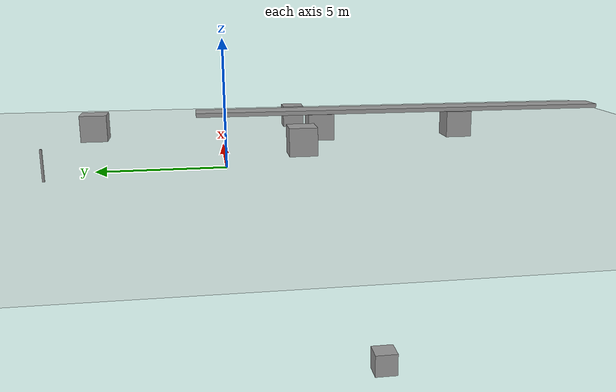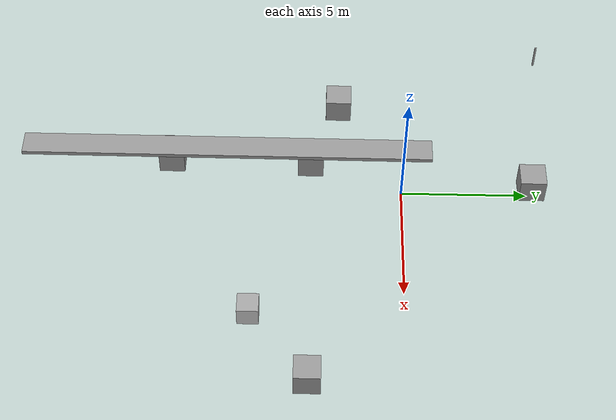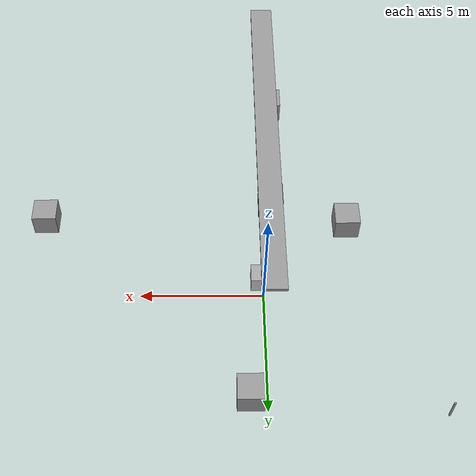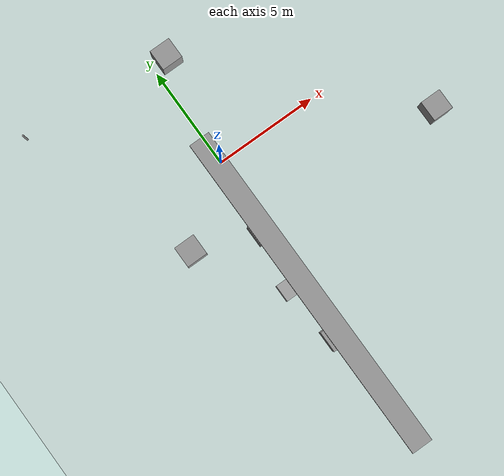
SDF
<sdf version="1.6">
 <world name="default">
  <model name="ground_plane">
   <static>1</static>
   <link name="link">
    <collision name="collision">
     <geometry><plane><normal>0 0 1</normal><size>100 100</size></plane></geometry>
     <surface>
      <contact><collide_bitmask>65535</collide_bitmask></contact>
      <friction><ode><mu>100</mu><mu2>50</mu2></ode></friction>
     </surface>
    </collision>
    <visual name="visual">
     <cast_shadows>0</cast_shadows>
     <geometry><plane><normal>0 0 1</normal><size>100 100</size></plane></geometry>
     <material>
      <script><uri>file://media/materials/scripts/gazebo.material</uri><name>Gazebo/Grey</name></script>
     </material>
    </visual>
   </link>
  </model>
  <model name="unit_box">
   <pose>0.686934 4.97774 1.63725 0 -8e-06 -3.1e-05</pose>
   <link name="link">
    <inertial>
     <mass>1</mass>
     <inertia>
      <ixx>0.166667</ixx>
      <ixy>0</ixy>
      <ixz>0</ixz>
      <iyy>0.166667</iyy>
      <iyz>0</iyz>
      <izz>0.166667</izz>
     </inertia>
    </inertial>
    <collision name="collision"><geometry><box><size>1 1 1</size></box></geometry></collision>
    <visual name="visual">
     <geometry><box><size>1 1 1</size></box></geometry>
     <material>
      <script><name>Gazebo/Grey</name><uri>file://media/materials/scripts/gazebo.material</uri></script>
     </material>
    </visual>
   </link>
  </model>
  <model name="unit_cylinder_clone_16_clone_24">
   <link name="link">
    <inertial>
     <mass>10000.1</mass>
     <inertia><ixx>837.395</ixx><ixy>0</ixy><ixz>0</ixz><iyy>837.395</iyy><iyz>0</iyz><izz>8.09922</izz></inertia>
    </inertial>
    <visual name="visual">
     <geometry><cylinder><radius>0.0402468</radius><length>1</length></cylinder></geometry>
     <material>
      <script><name>Gazebo/Grey</name><uri>file://media/materials/scripts/gazebo.material</uri></script>
      <shader type="vertex"><normal_map>__default__</normal_map></shader>
     </material>
    </visual>
    <collision name="collision">
     <geometry><cylinder><radius>0.040247</radius><length>1</length></cylinder></geometry>
     <surface>
      <friction>
       <ode><mu>1</mu><mu2>1</mu2><fdir1>0 0 0</fdir1><slip1>0</slip1><slip2>0</slip2></ode>
       <torsional>
        <coefficient>1</coefficient>
        <patch_radius>0</patch_radius>
        <surface_radius>0</surface_radius>
        <use_patch_radius>1</use_patch_radius>
        <ode><slip>0</slip></ode>
       </torsional>
      </friction>
      <bounce><restitution_coefficient>0</restitution_coefficient><threshold>1e+06</threshold></bounce>
      <contact>
       <collide_without_contact>0</collide_without_contact>
       <collide_without_contact_bitmask>1</collide_without_contact_bitmask>
       <collide_bitmask>1</collide_bitmask>
       <ode>
        <soft_cfm>0</soft_cfm>
        <soft_erp>0.2</soft_erp>
        <kp>1e+13</kp>
        <kd>1</kd>
        <max_vel>0.01</max_vel>
        <min_depth>0</min_depth>
       </ode>
       <bullet>
        <split_impulse>1</split_impulse>
        <split_impulse_penetration_threshold>-0.01</split_impulse_penetration_threshold>
        <soft_cfm>0</soft_cfm>
        <soft_erp>0.2</soft_erp>
        <kp>1e+13</kp>
        <kd>1</kd>
       </bullet>
      </contact>
     </surface>
    </collision>
   </link>
   <static>0</static>
   <pose>-6.37961 5.67188 1.63725 -1e-06 1e-06 -0.000662</pose>
  </model>
  <model name="unit_box_0">
   <pose>-3.41361 -2.58533 1.63725 8e-06 0 -8e-06</pose>
   <link name="link">
    <inertial>
     <mass>1</mass>
     <inertia>
      <ixx>0.166667</ixx>
      <ixy>0</ixy>
      <ixz>0</ixz>
      <iyy>0.166667</iyy>
      <iyz>0</iyz>
      <izz>0.166667</izz>
     </inertia>
    </inertial>
    <collision name="collision"><geometry><box><size>1 1 1</size></box></geometry></collision>
    <visual name="visual">
     <geometry><box><size>1 1 1</size></box></geometry>
     <material>
      <script><name>Gazebo/Grey</name><uri>file://media/materials/scripts/gazebo.material</uri></script>
     </material>
    </visual>
   </link>
  </model>
  <model name="unit_box_1">
   <pose>9.14383 -3.61985 0.637255 0 -0 0</pose>
   <link name="link">
    <inertial>
     <mass>1</mass>
     <inertia>
      <ixx>0.166667</ixx>
      <ixy>0</ixy>
      <ixz>0</ixz>
      <iyy>0.166667</iyy>
      <iyz>0</iyz>
      <izz>0.166667</izz>
     </inertia>
    </inertial>
    <collision name="collision"><geometry><box><size>1 1 1</size></box></geometry></collision>
    <visual name="visual">
     <geometry><box><size>1 1 1</size></box></geometry>
     <material>
      <script><name>Gazebo/Grey</name><uri>file://media/materials/scripts/gazebo.material</uri></script>
     </material>
    </visual>
   </link>
  </model>
  <model name="unit_box_0_clone_2">
   <pose>-0.321171 -6.95267 2.20764 4e-06 3.9e-05 0.000696</pose>
   <link name="link">
    <inertial>
     <mass>1</mass>
     <inertia>
      <ixx>0.166667</ixx>
      <ixy>0</ixy>
      <ixz>0</ixz>
      <iyy>0.166667</iyy>
      <iyz>0</iyz>
      <izz>0.166667</izz>
     </inertia>
    </inertial>
    <collision name="collision"><geometry><box><size>1 16.0982 0.155905</size></box></geometry></collision>
    <visual name="visual">
     <geometry><box><size>1 16.0982 0.155905</size></box></geometry>
     <material>
      <script><name>Gazebo/Grey</name><uri>file://media/materials/scripts/gazebo.material</uri></script>
     </material>
    </visual>
   </link>
  </model>
  <model name="unit_box_0_clone_0">
   <link name="link">
    <inertial>
     <mass>1e+10</mass>
     <inertia>
      <ixx>1.66667e+09</ixx>
      <ixy>0</ixy>
      <ixz>0</ixz>
      <iyy>1.66667e+09</iyy>
      <iyz>0</iyz>
      <izz>1.66667e+09</izz>
     </inertia>
    </inertial>
    <visual name="visual">
     <geometry><box><size>1 1 1</size></box></geometry>
     <material>
      <script><name>Gazebo/Grey</name><uri>file://media/materials/scripts/gazebo.material</uri></script>
      <shader type="vertex"><normal_map>__default__</normal_map></shader>
     </material>
    </visual>
    <collision name="collision">
     <geometry><box><size>1 1 1</size></box></geometry>
     <surface>
      <friction>
       <ode><mu>1</mu><mu2>1</mu2><fdir1>0 0 0</fdir1><slip1>0</slip1><slip2>0</slip2></ode>
       <torsional>
        <coefficient>1</coefficient>
        <patch_radius>0</patch_radius>
        <surface_radius>0</surface_radius>
        <use_patch_radius>1</use_patch_radius>
        <ode><slip>0</slip></ode>
       </torsional>
      </friction>
      <bounce><restitution_coefficient>0</restitution_coefficient><threshold>1e+06</threshold></bounce>
      <contact>
       <collide_without_contact>0</collide_without_contact>
       <collide_without_contact_bitmask>1</collide_without_contact_bitmask>
       <collide_bitmask>1</collide_bitmask>
       <ode>
        <soft_cfm>0</soft_cfm>
        <soft_erp>0.2</soft_erp>
        <kp>1e+13</kp>
        <kd>1</kd>
        <max_vel>0.01</max_vel>
        <min_depth>0</min_depth>
       </ode>
       <bullet>
        <split_impulse>1</split_impulse>
        <split_impulse_penetration_threshold>-0.01</split_impulse_penetration_threshold>
        <soft_cfm>0</soft_cfm>
        <soft_erp>0.2</soft_erp>
        <kp>1e+13</kp>
        <kd>1</kd>
       </bullet>
      </contact>
     </surface>
    </collision>
   </link>
   <static>0</static>
   <pose>-0.364491 -6.40442 -8.69384 -3.4e-05 -0 -0.000205</pose>
  </model>
  <model name="unit_box_0_clone_1">
   <link name="link">
    <inertial>
     <mass>1e+08</mass>
     <inertia>
      <ixx>1.66667e+07</ixx>
      <ixy>0</ixy>
      <ixz>0</ixz>
      <iyy>1.66667e+07</iyy>
      <iyz>0</iyz>
      <izz>1.66667e+07</izz>
     </inertia>
    </inertial>
    <visual name="visual">
     <geometry><box><size>1 1 1</size></box></geometry>
     <material>
      <script><name>Gazebo/Grey</name><uri>file://media/materials/scripts/gazebo.material</uri></script>
      <shader type="vertex"><normal_map>__default__</normal_map></shader>
     </material>
    </visual>
    <collision name="collision">
     <geometry><box><size>1 1 1</size></box></geometry>
     <surface>
      <friction>
       <ode><mu>1</mu><mu2>1</mu2><fdir1>0 0 0</fdir1><slip1>0</slip1><slip2>0</slip2></ode>
       <torsional>
        <coefficient>1</coefficient>
        <patch_radius>0</patch_radius>
        <surface_radius>0</surface_radius>
        <use_patch_radius>1</use_patch_radius>
        <ode><slip>0</slip></ode>
       </torsional>
      </friction>
      <bounce><restitution_coefficient>0</restitution_coefficient><threshold>1e+06</threshold></bounce>
      <contact>
       <collide_without_contact>0</collide_without_contact>
       <collide_without_contact_bitmask>1</collide_without_contact_bitmask>
       <collide_bitmask>1</collide_bitmask>
       <ode>
        <soft_cfm>0</soft_cfm>
        <soft_erp>0.2</soft_erp>
        <kp>1e+13</kp>
        <kd>1</kd>
        <max_vel>0.01</max_vel>
        <min_depth>0</min_depth>
       </ode>
       <bullet>
        <split_impulse>1</split_impulse>
        <split_impulse_penetration_threshold>-0.01</split_impulse_penetration_threshold>
        <soft_cfm>0</soft_cfm>
        <soft_erp>0.2</soft_erp>
        <kp>1e+13</kp>
        <kd>1</kd>
       </bullet>
      </contact>
     </surface>
    </collision>
   </link>
   <static>0</static>
   <pose>-0.358177 -3.65694 1.62992 0 -0 9.4e-05</pose>
  </model>
  <model name="unit_box_0_clone">
   <link name="link">
    <inertial>
     <mass>1e+08</mass>
     <inertia>
      <ixx>1.66667e+07</ixx>
      <ixy>0</ixy>
      <ixz>0</ixz>
      <iyy>1.66667e+07</iyy>
      <iyz>0</iyz>
      <izz>1.66667e+07</izz>
     </inertia>
    </inertial>
    <visual name="visual">
     <geometry><box><size>1 1 1</size></box></geometry>
     <material>
      <script><name>Gazebo/Grey</name><uri>file://media/materials/scripts/gazebo.material</uri></script>
      <shader type="vertex"><normal_map>__default__</normal_map></shader>
     </material>
    </visual>
    <collision name="collision">
     <geometry><box><size>1 1 1</size></box></geometry>
     <surface>
      <friction>
       <ode><mu>1</mu><mu2>1</mu2><fdir1>0 0 0</fdir1><slip1>0</slip1><slip2>0</slip2></ode>
       <torsional>
        <coefficient>1</coefficient>
        <patch_radius>0</patch_radius>
        <surface_radius>0</surface_radius>
        <use_patch_radius>1</use_patch_radius>
        <ode><slip>0</slip></ode>
       </torsional>
      </friction>
      <bounce><restitution_coefficient>0</restitution_coefficient><threshold>1e+06</threshold></bounce>
      <contact>
       <collide_without_contact>0</collide_without_contact>
       <collide_without_contact_bitmask>1</collide_without_contact_bitmask>
       <collide_bitmask>1</collide_bitmask>
       <ode>
        <soft_cfm>0</soft_cfm>
        <soft_erp>0.2</soft_erp>
        <kp>1e+13</kp>
        <kd>1</kd>
        <max_vel>0.01</max_vel>
        <min_depth>0</min_depth>
       </ode>
       <bullet>
        <split_impulse>1</split_impulse>
        <split_impulse_penetration_threshold>-0.01</split_impulse_penetration_threshold>
        <soft_cfm>0</soft_cfm>
        <soft_erp>0.2</soft_erp>
        <kp>1e+13</kp>
        <kd>1</kd>
       </bullet>
      </contact>
     </surface>
    </collision>
   </link>
   <static>0</static>
   <pose>-0.473678 -9.14735 1.62992 0 0 -0.001538</pose>
  </model>
 </world>
</sdf>
